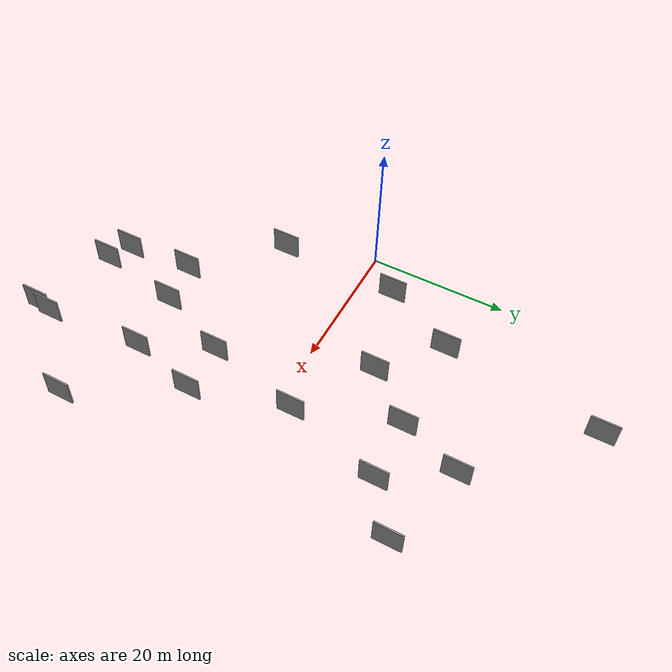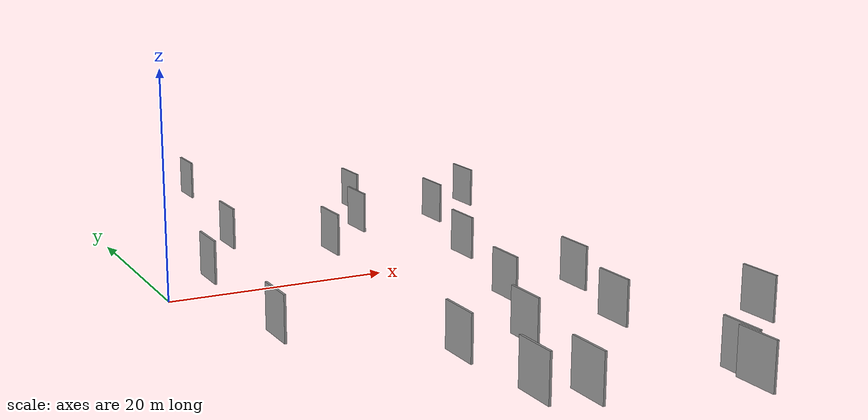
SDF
<sdf version="1.6">
 <world name="default">
  <scene>
   <sky><clouds><speed>12</speed></clouds></sky>
   <ambient>0.4 0.4 0.4 1</ambient>
   <background>0.7 0.7 0.7 1</background>
   <shadows>1</shadows>
  </scene>
  <gravity>0 0 -9.8066</gravity>
  <magnetic_field>6e-06 2.3e-05 -4.2e-05</magnetic_field>
  <physics default="0" name="default_physics" type="ode">
   <ode>
    <solver>
     <type>quick</type>
     <iters>10</iters>
     <sor>1.0</sor>
     <use_dynamic_moi_rescaling>0</use_dynamic_moi_rescaling>
    </solver>
    <constraints>
     <cfm>0</cfm>
     <erp>0.2</erp>
     <contact_max_correcting_vel>100</contact_max_correcting_vel>
     <contact_surface_layer>0.001</contact_surface_layer>
    </constraints>
   </ode>
   <max_step_size>0.004</max_step_size>
   <real_time_factor>1</real_time_factor>
   <real_time_update_rate>250</real_time_update_rate>
  </physics>
  <light name="sun" type="directional">
   <pose>0 0 10 0 0 0</pose>
   <diffuse>0.8 0.8 0.8 1</diffuse>
   <specular>0.2 0.2 0.2 1</specular>
   <attenuation>
    <range>1000</range>
    <constant>0.9</constant>
    <linear>0.01</linear>
    <quadratic>0.001</quadratic>
   </attenuation>
   <direction>-0.5 0.1 -0.9</direction>
  </light>
  <model name="grey_wall_1">
   <static>1</static>
   <pose>42.3563 -25.4138 0.0 0.000000 0.000000 1.570796</pose>
   <link name="link">
    <pose>0 0 2.00 0 0 0</pose>
    <collision name="collision"><geometry><box><size>4.00 0.2 4.00</size></box></geometry></collision>
    <visual name="visual">
     <cast_shadows>0</cast_shadows>
     <geometry><box><size>4.00 0.2 4.00</size></box></geometry>
     <material>
      <script>
       <uri>model://grey_wall/materials/scripts</uri>
       <uri>model://grey_wall/materials/textures</uri>
       <name>vrc/grey_wall</name>
      </script>
     </material>
    </visual>
   </link>
  </model>
  <model name="grey_wall_2">
   <static>1</static>
   <pose>28.4034 24.9880 0.0 0.000000 0.000000 1.570796</pose>
   <link name="link">
    <pose>0 0 2.00 0 0 0</pose>
    <collision name="collision"><geometry><box><size>4.00 0.2 4.00</size></box></geometry></collision>
    <visual name="visual">
     <cast_shadows>0</cast_shadows>
     <geometry><box><size>4.00 0.2 4.00</size></box></geometry>
     <material>
      <script>
       <uri>model://grey_wall/materials/scripts</uri>
       <uri>model://grey_wall/materials/textures</uri>
       <name>vrc/grey_wall</name>
      </script>
     </material>
    </visual>
   </link>
  </model>
  <model name="grey_wall_3">
   <static>1</static>
   <pose>14.2299 38.8647 0.0 0.000000 0.000000 1.570796</pose>
   <link name="link">
    <pose>0 0 2.00 0 0 0</pose>
    <collision name="collision"><geometry><box><size>4.00 0.2 4.00</size></box></geometry></collision>
    <visual name="visual">
     <cast_shadows>0</cast_shadows>
     <geometry><box><size>4.00 0.2 4.00</size></box></geometry>
     <material>
      <script>
       <uri>model://grey_wall/materials/scripts</uri>
       <uri>model://grey_wall/materials/textures</uri>
       <name>vrc/grey_wall</name>
      </script>
     </material>
    </visual>
   </link>
  </model>
  <model name="grey_wall_4">
   <static>1</static>
   <pose>21.9740 -21.9791 0.0 0.000000 0.000000 1.570796</pose>
   <link name="link">
    <pose>0 0 2.00 0 0 0</pose>
    <collision name="collision"><geometry><box><size>4.00 0.2 4.00</size></box></geometry></collision>
    <visual name="visual">
     <cast_shadows>0</cast_shadows>
     <geometry><box><size>4.00 0.2 4.00</size></box></geometry>
     <material>
      <script>
       <uri>model://grey_wall/materials/scripts</uri>
       <uri>model://grey_wall/materials/textures</uri>
       <name>vrc/grey_wall</name>
      </script>
     </material>
    </visual>
   </link>
  </model>
  <model name="grey_wall_5">
   <static>1</static>
   <pose>10.9429 15.8592 0.0 0.000000 0.000000 1.570796</pose>
   <link name="link">
    <pose>0 0 2.00 0 0 0</pose>
    <collision name="collision"><geometry><box><size>4.00 0.2 4.00</size></box></geometry></collision>
    <visual name="visual">
     <cast_shadows>0</cast_shadows>
     <geometry><box><size>4.00 0.2 4.00</size></box></geometry>
     <material>
      <script>
       <uri>model://grey_wall/materials/scripts</uri>
       <uri>model://grey_wall/materials/textures</uri>
       <name>vrc/grey_wall</name>
      </script>
     </material>
    </visual>
   </link>
  </model>
  <model name="grey_wall_6">
   <static>1</static>
   <pose>40.6334 21.5172 0.0 0.000000 0.000000 1.570796</pose>
   <link name="link">
    <pose>0 0 2.00 0 0 0</pose>
    <collision name="collision"><geometry><box><size>4.00 0.2 4.00</size></box></geometry></collision>
    <visual name="visual">
     <cast_shadows>0</cast_shadows>
     <geometry><box><size>4.00 0.2 4.00</size></box></geometry>
     <material>
      <script>
       <uri>model://grey_wall/materials/scripts</uri>
       <uri>model://grey_wall/materials/textures</uri>
       <name>vrc/grey_wall</name>
      </script>
     </material>
    </visual>
   </link>
  </model>
  <model name="grey_wall_7">
   <static>1</static>
   <pose>4.8999 -12.4683 0.0 0.000000 0.000000 1.570796</pose>
   <link name="link">
    <pose>0 0 2.00 0 0 0</pose>
    <collision name="collision"><geometry><box><size>4.00 0.2 4.00</size></box></geometry></collision>
    <visual name="visual">
     <cast_shadows>0</cast_shadows>
     <geometry><box><size>4.00 0.2 4.00</size></box></geometry>
     <material>
      <script>
       <uri>model://grey_wall/materials/scripts</uri>
       <uri>model://grey_wall/materials/textures</uri>
       <name>vrc/grey_wall</name>
      </script>
     </material>
    </visual>
   </link>
  </model>
  <model name="grey_wall_8">
   <static>1</static>
   <pose>31.9470 -35.4613 0.0 0.000000 0.000000 1.570796</pose>
   <link name="link">
    <pose>0 0 2.00 0 0 0</pose>
    <collision name="collision"><geometry><box><size>4.00 0.2 4.00</size></box></geometry></collision>
    <visual name="visual">
     <cast_shadows>0</cast_shadows>
     <geometry><box><size>4.00 0.2 4.00</size></box></geometry>
     <material>
      <script>
       <uri>model://grey_wall/materials/scripts</uri>
       <uri>model://grey_wall/materials/textures</uri>
       <name>vrc/grey_wall</name>
      </script>
     </material>
    </visual>
   </link>
  </model>
  <model name="grey_wall_9">
   <static>1</static>
   <pose>5.3465 5.1892 0.0 0.000000 0.000000 1.570796</pose>
   <link name="link">
    <pose>0 0 2.00 0 0 0</pose>
    <collision name="collision"><geometry><box><size>4.00 0.2 4.00</size></box></geometry></collision>
    <visual name="visual">
     <cast_shadows>0</cast_shadows>
     <geometry><box><size>4.00 0.2 4.00</size></box></geometry>
     <material>
      <script>
       <uri>model://grey_wall/materials/scripts</uri>
       <uri>model://grey_wall/materials/textures</uri>
       <name>vrc/grey_wall</name>
      </script>
     </material>
    </visual>
   </link>
  </model>
  <model name="grey_wall_10">
   <static>1</static>
   <pose>30.9907 -21.0378 0.0 0.000000 0.000000 1.570796</pose>
   <link name="link">
    <pose>0 0 2.00 0 0 0</pose>
    <collision name="collision"><geometry><box><size>4.00 0.2 4.00</size></box></geometry></collision>
    <visual name="visual">
     <cast_shadows>0</cast_shadows>
     <geometry><box><size>4.00 0.2 4.00</size></box></geometry>
     <material>
      <script>
       <uri>model://grey_wall/materials/scripts</uri>
       <uri>model://grey_wall/materials/textures</uri>
       <name>vrc/grey_wall</name>
      </script>
     </material>
    </visual>
   </link>
  </model>
  <model name="grey_wall_11">
   <static>1</static>
   <pose>29.9574 2.4031 0.0 0.000000 0.000000 1.570796</pose>
   <link name="link">
    <pose>0 0 2.00 0 0 0</pose>
    <collision name="collision"><geometry><box><size>4.00 0.2 4.00</size></box></geometry></collision>
    <visual name="visual">
     <cast_shadows>0</cast_shadows>
     <geometry><box><size>4.00 0.2 4.00</size></box></geometry>
     <material>
      <script>
       <uri>model://grey_wall/materials/scripts</uri>
       <uri>model://grey_wall/materials/textures</uri>
       <name>vrc/grey_wall</name>
      </script>
     </material>
    </visual>
   </link>
  </model>
  <model name="grey_wall_12">
   <static>1</static>
   <pose>25.1142 16.1302 0.0 0.000000 0.000000 1.570796</pose>
   <link name="link">
    <pose>0 0 2.00 0 0 0</pose>
    <collision name="collision"><geometry><box><size>4.00 0.2 4.00</size></box></geometry></collision>
    <visual name="visual">
     <cast_shadows>0</cast_shadows>
     <geometry><box><size>4.00 0.2 4.00</size></box></geometry>
     <material>
      <script>
       <uri>model://grey_wall/materials/scripts</uri>
       <uri>model://grey_wall/materials/textures</uri>
       <name>vrc/grey_wall</name>
      </script>
     </material>
    </visual>
   </link>
  </model>
  <model name="grey_wall_13">
   <static>1</static>
   <pose>19.0687 9.1226 0.0 0.000000 0.000000 1.570796</pose>
   <link name="link">
    <pose>0 0 2.00 0 0 0</pose>
    <collision name="collision"><geometry><box><size>4.00 0.2 4.00</size></box></geometry></collision>
    <visual name="visual">
     <cast_shadows>0</cast_shadows>
     <geometry><box><size>4.00 0.2 4.00</size></box></geometry>
     <material>
      <script>
       <uri>model://grey_wall/materials/scripts</uri>
       <uri>model://grey_wall/materials/textures</uri>
       <name>vrc/grey_wall</name>
      </script>
     </material>
    </visual>
   </link>
  </model>
  <model name="grey_wall_14">
   <static>1</static>
   <pose>16.2133 -32.5682 0.0 0.000000 0.000000 1.570796</pose>
   <link name="link">
    <pose>0 0 2.00 0 0 0</pose>
    <collision name="collision"><geometry><box><size>4.00 0.2 4.00</size></box></geometry></collision>
    <visual name="visual">
     <cast_shadows>0</cast_shadows>
     <geometry><box><size>4.00 0.2 4.00</size></box></geometry>
     <material>
      <script>
       <uri>model://grey_wall/materials/scripts</uri>
       <uri>model://grey_wall/materials/textures</uri>
       <name>vrc/grey_wall</name>
      </script>
     </material>
    </visual>
   </link>
  </model>
  <model name="grey_wall_15">
   <static>1</static>
   <pose>31.5056 -37.7140 0.0 0.000000 0.000000 1.570796</pose>
   <link name="link">
    <pose>0 0 2.00 0 0 0</pose>
    <collision name="collision"><geometry><box><size>4.00 0.2 4.00</size></box></geometry></collision>
    <visual name="visual">
     <cast_shadows>0</cast_shadows>
     <geometry><box><size>4.00 0.2 4.00</size></box></geometry>
     <material>
      <script>
       <uri>model://grey_wall/materials/scripts</uri>
       <uri>model://grey_wall/materials/textures</uri>
       <name>vrc/grey_wall</name>
      </script>
     </material>
    </visual>
   </link>
  </model>
  <model name="grey_wall_16">
   <static>1</static>
   <pose>19.5354 -34.2358 0.0 0.000000 0.000000 1.570796</pose>
   <link name="link">
    <pose>0 0 2.00 0 0 0</pose>
    <collision name="collision"><geometry><box><size>4.00 0.2 4.00</size></box></geometry></collision>
    <visual name="visual">
     <cast_shadows>0</cast_shadows>
     <geometry><box><size>4.00 0.2 4.00</size></box></geometry>
     <material>
      <script>
       <uri>model://grey_wall/materials/scripts</uri>
       <uri>model://grey_wall/materials/textures</uri>
       <name>vrc/grey_wall</name>
      </script>
     </material>
    </visual>
   </link>
  </model>
  <model name="grey_wall_17">
   <static>1</static>
   <pose>15.5525 -22.9472 0.0 0.000000 0.000000 1.570796</pose>
   <link name="link">
    <pose>0 0 2.00 0 0 0</pose>
    <collision name="collision"><geometry><box><size>4.00 0.2 4.00</size></box></geometry></collision>
    <visual name="visual">
     <cast_shadows>0</cast_shadows>
     <geometry><box><size>4.00 0.2 4.00</size></box></geometry>
     <material>
      <script>
       <uri>model://grey_wall/materials/scripts</uri>
       <uri>model://grey_wall/materials/textures</uri>
       <name>vrc/grey_wall</name>
      </script>
     </material>
    </visual>
   </link>
  </model>
  <model name="grey_wall_18">
   <static>1</static>
   <pose>34.0459 16.4020 0.0 0.000000 0.000000 1.570796</pose>
   <link name="link">
    <pose>0 0 2.00 0 0 0</pose>
    <collision name="collision"><geometry><box><size>4.00 0.2 4.00</size></box></geometry></collision>
    <visual name="visual">
     <cast_shadows>0</cast_shadows>
     <geometry><box><size>4.00 0.2 4.00</size></box></geometry>
     <material>
      <script>
       <uri>model://grey_wall/materials/scripts</uri>
       <uri>model://grey_wall/materials/textures</uri>
       <name>vrc/grey_wall</name>
      </script>
     </material>
    </visual>
   </link>
  </model>
  <model name="grey_wall_19">
   <static>1</static>
   <pose>33.7502 -11.1022 0.0 0.000000 0.000000 1.570796</pose>
   <link name="link">
    <pose>0 0 2.00 0 0 0</pose>
    <collision name="collision"><geometry><box><size>4.00 0.2 4.00</size></box></geometry></collision>
    <visual name="visual">
     <cast_shadows>0</cast_shadows>
     <geometry><box><size>4.00 0.2 4.00</size></box></geometry>
     <material>
      <script>
       <uri>model://grey_wall/materials/scripts</uri>
       <uri>model://grey_wall/materials/textures</uri>
       <name>vrc/grey_wall</name>
      </script>
     </material>
    </visual>
   </link>
  </model>
  <model name="grey_wall_20">
   <static>1</static>
   <pose>26.4982 -11.3734 0.0 0.000000 0.000000 1.570796</pose>
   <link name="link">
    <pose>0 0 2.00 0 0 0</pose>
    <collision name="collision"><geometry><box><size>4.00 0.2 4.00</size></box></geometry></collision>
    <visual name="visual">
     <cast_shadows>0</cast_shadows>
     <geometry><box><size>4.00 0.2 4.00</size></box></geometry>
     <material>
      <script>
       <uri>model://grey_wall/materials/scripts</uri>
       <uri>model://grey_wall/materials/textures</uri>
       <name>vrc/grey_wall</name>
      </script>
     </material>
    </visual>
   </link>
  </model>
 </world>
</sdf>
